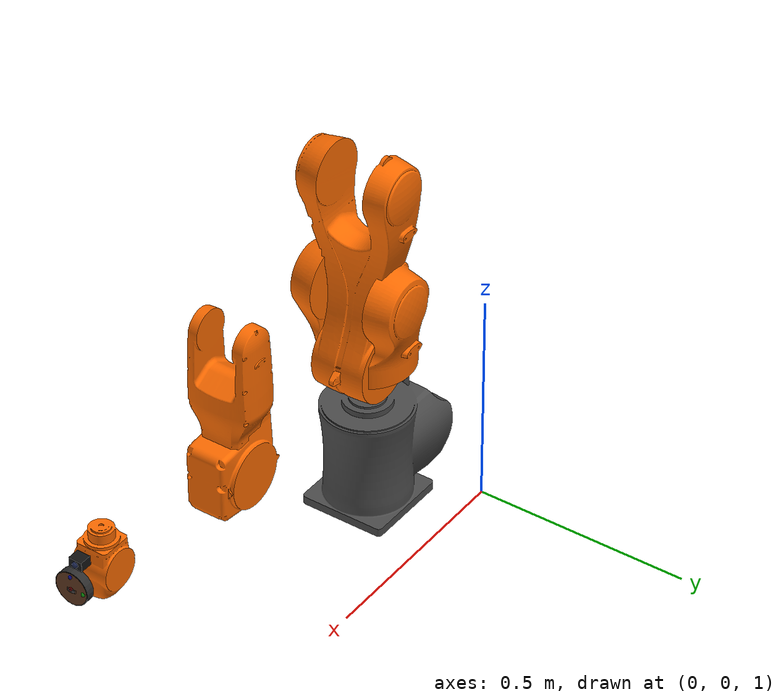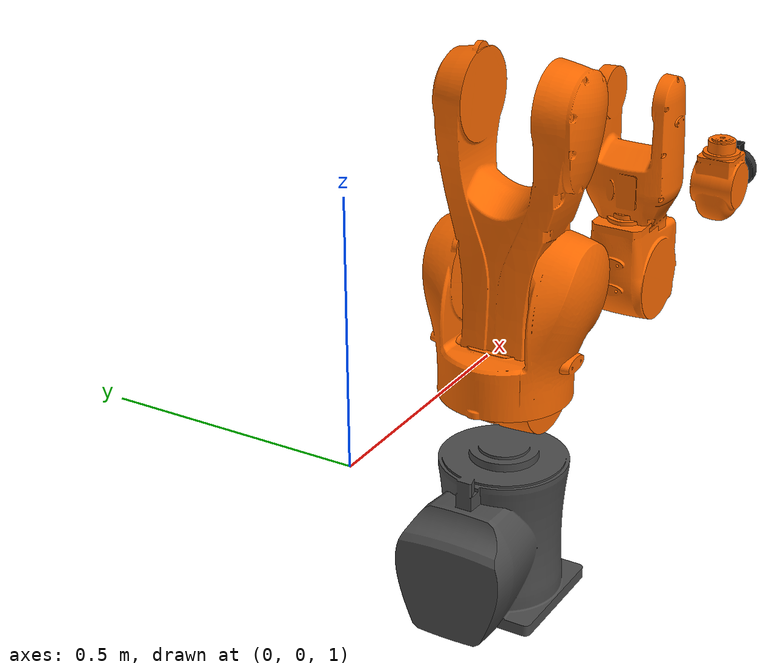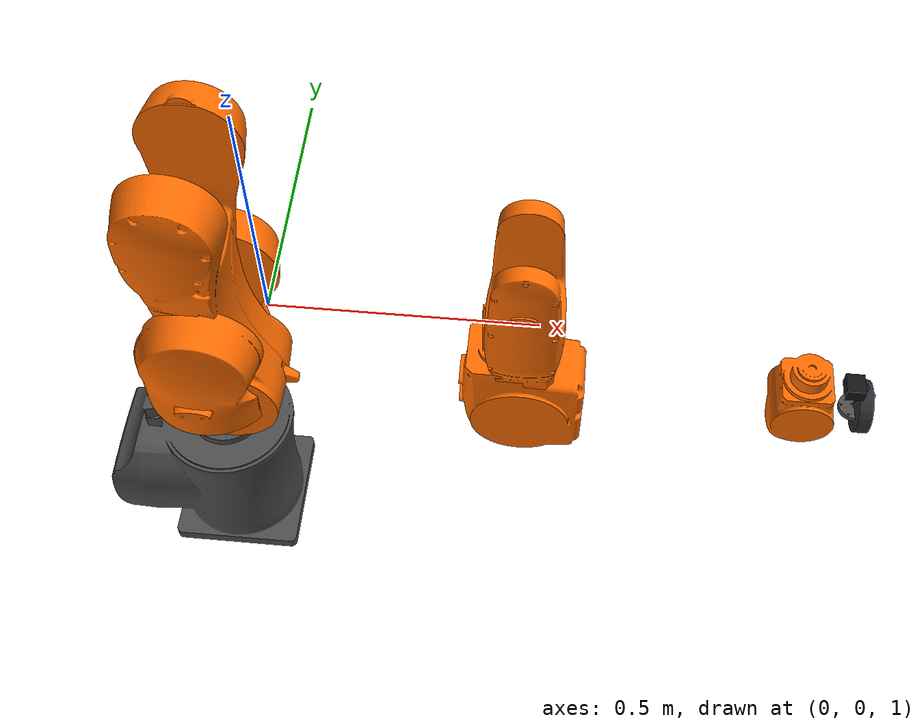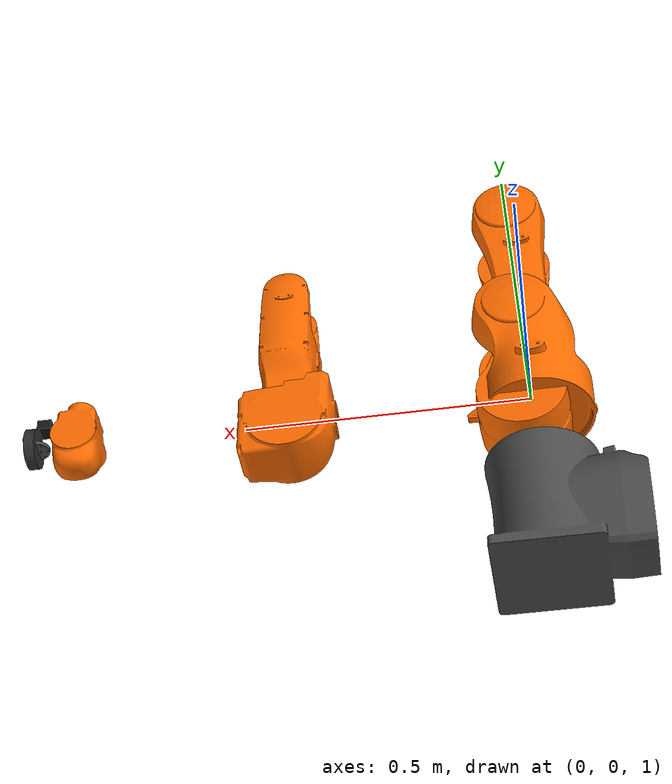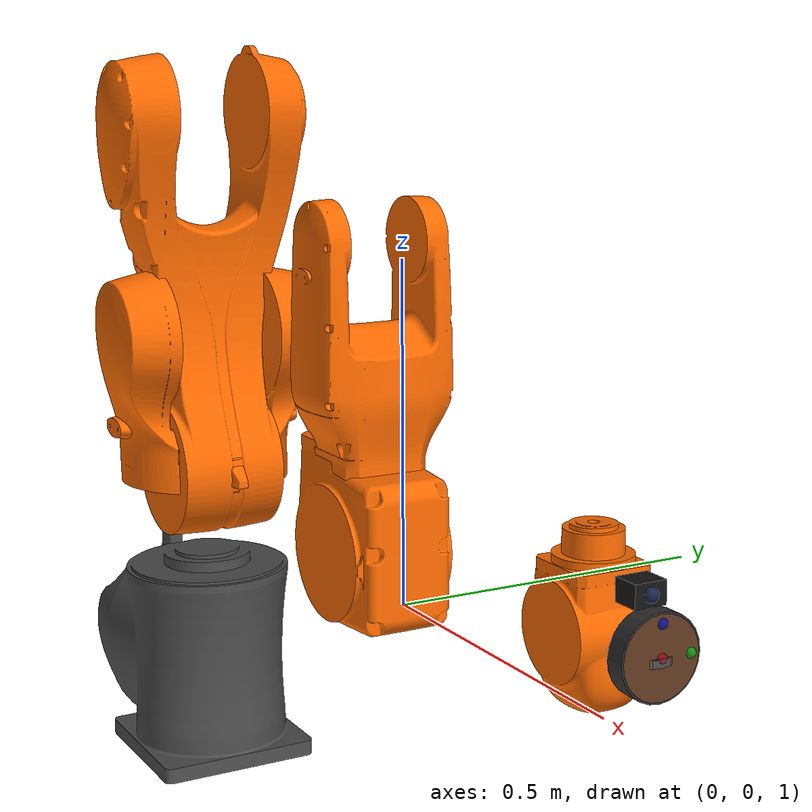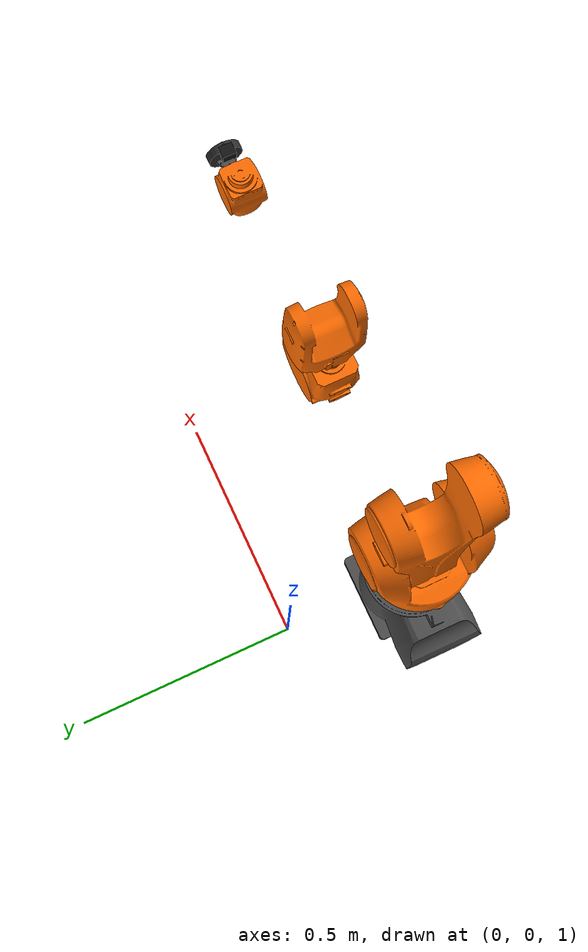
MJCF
<mujoco>
  <compiler meshdir="../assets/urdf/meshes/" angle="radian"/>

  <asset>
    <mesh name="base_link" content_type="model/stl" file="base_link.stl"/>
    <mesh name="link_1"    content_type="model/stl" file="link_1.stl"/>
    <mesh name="link_2"    content_type="model/stl" file="link_2.stl"/>
    <mesh name="link_3"    content_type="model/stl" file="link_3.stl"/>
    <mesh name="link_4"    content_type="model/stl" file="link_4.stl"/>
    <mesh name="link_5"    content_type="model/stl" file="link_5.stl"/>
    <mesh name="link_6"    content_type="model/stl" file="link_6.stl"/>
  </asset>

  <worldbody>
    <!--
      kuka_base is the single configuration point for arm placement.
      Change pos here to mount the arm anywhere in the world.
    -->
    <body name="kuka_base" pos="0 -0.3 0.85">

      <!-- Base link: fixed pedestal — collision disabled (it's bolted to the table) -->
      <geom type="mesh" rgba="0.3 0.3 0.3 1" mesh="base_link"
            contype="0" conaffinity="0"/>

      <!-- Arm kinematic chain -->
      <body name="link_1" pos="0 0 0.4">
        <joint name="joint_a1" pos="0 0 0" axis="0 0 -1" range="-2.96706 2.96706"/>
        <geom type="mesh" rgba="1 0.42 0 1" mesh="link_1"
              contype="1" conaffinity="2"/>

        <body name="link_2" pos="0.025 0 0">
          <joint name="joint_a2" pos="0 0 0" axis="0 1 0" range="-3.31613 0.785398"/>
          <geom type="mesh" rgba="1 0.42 0 1" mesh="link_2"
                contype="1" conaffinity="2"/>

          <body name="link_3" pos="0.455 0 0">
            <joint name="joint_a3" pos="0 0 0" axis="0 1 0" range="-2.0944 2.72271"/>
            <geom type="mesh" rgba="1 0.42 0 1" mesh="link_3"
                  contype="1" conaffinity="2"/>

            <body name="link_4" pos="0 0 0.035">
              <joint name="joint_a4" pos="0 0 0" axis="-1 0 0" range="-3.22886 3.22886"/>
              <geom type="mesh" rgba="1 0.42 0 1" mesh="link_4"
                    contype="1" conaffinity="2"/>

              <body name="link_5" pos="0.42 0 0">
                <joint name="joint_a5" pos="0 0 0" axis="0 1 0" range="-2.0944 2.0944"/>
                <geom type="mesh" rgba="1 0.42 0 1" mesh="link_5"
                      contype="1" conaffinity="2"/>

                <body name="link_6" pos="0.08 0 0">
                  <joint name="joint_a6" pos="0 0 0" axis="-1 0 0" range="-6.10865 6.10865"/>
                  <geom type="mesh" rgba="0.3 0.3 0.3 1" mesh="link_6"
                        contype="1" conaffinity="2"/>

                  <body name="em_pad" pos="0.01 0 0">
                    <!-- Cylinder: local X axis, radius=0.04, half-length=0.01 -->
                    <geom name="em_pad_geom"
                          type="cylinder"
                          fromto="-0.01 0 0  0.01 0 0"
                          size="0.04"
                          rgba="0.18 0.18 0.18 1"
                          contype="1" conaffinity="2"/>

                    <site name="em_contact_site"
                          pos="0.01 0 0"
                          euler="0 90 0"
                          size="0.005" rgba="1 0 0 0.5"/>
                    <site name="em_dot_b"
                          pos="0.01 0.03 0"
                          size="0.005" rgba="0 1 0 0.5"/>
                    <site name="em_dot_c"
                          pos="0.01 0 0.03"
                          size="0.005" rgba="0 0 1 0.5"/>

                    <geom name="em_touch_geom"
                          type="cylinder"
                          fromto="0.008 0 0  0.011 0 0"
                          size="0.038"
                          rgba="1 0.4 0 0.25"
                          condim="1"
                          contype="8" conaffinity="4"/>

                    <site name="em_touch_site"
                          pos="0.01 0 0"
                          size="0.004"
                          rgba="1 0.5 0 0"/>

                    <!-- Camera body housing (visual only) -->
                    <geom name="cam_housing"
                          type="box"
                          pos="-0.02 0 0.05"
                          size="0.014 0.016 0.011"
                          rgba="0.08 0.08 0.08 1"
                          contype="0" conaffinity="0"/>

                    <!-- Lens (visual only) — dark-blue sphere at front face of housing -->
                    <geom name="cam_lens"
                          type="sphere"
                          pos="-0.006 0 0.05"
                          size="0.007"
                          rgba="0.10 0.14 0.30 1"
                          contype="0" conaffinity="0"/>

                    <!-- Egocentric VLA camera — optical axis tilted 20° downward -->
                    <camera name="cam_wrist"
                            pos="-0.02 0 0.10"
                            xyaxes="0 1 0  -0.342 0 -0.940"
                            fovy="80"/>

                  </body><!-- em_pad -->

                </body><!-- link_6 -->

              </body><!-- link_5 -->
            </body><!-- link_4 -->
          </body><!-- link_3 -->
        </body><!-- link_2 -->
      </body><!-- link_1 -->

    </body><!-- kuka_base -->
  </worldbody>

  <actuator>
    <position name="act_a1" joint="joint_a1" kp="500" kv="10" forcelimited="true" forcerange="-500 500"/>
    <position name="act_a2" joint="joint_a2" kp="500" kv="10" forcelimited="true" forcerange="-500 500"/>
    <position name="act_a3" joint="joint_a3" kp="500" kv="10" forcelimited="true" forcerange="-300 300"/>
    <position name="act_a4" joint="joint_a4" kp="300" kv="10" forcelimited="true" forcerange="-200 200"/>
    <position name="act_a5" joint="joint_a5" kp="200" kv="10" forcelimited="true" forcerange="-100 100"/>
    <position name="act_a6" joint="joint_a6" kp="100" kv="10" forcelimited="true" forcerange="-50  50"/>
  </actuator>

</mujoco>
